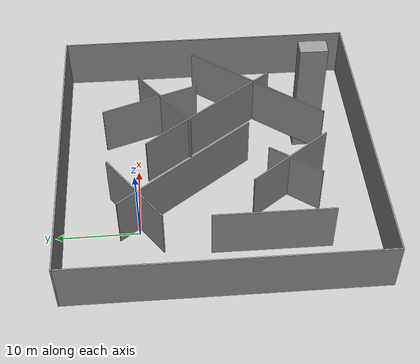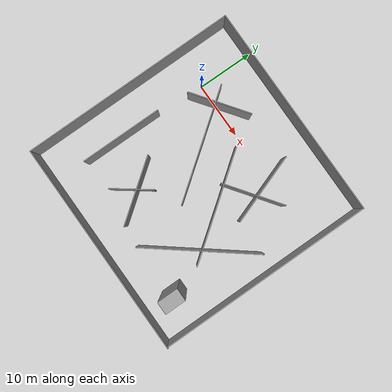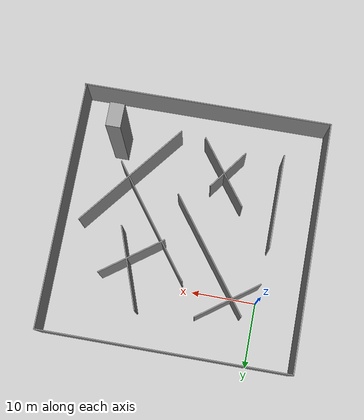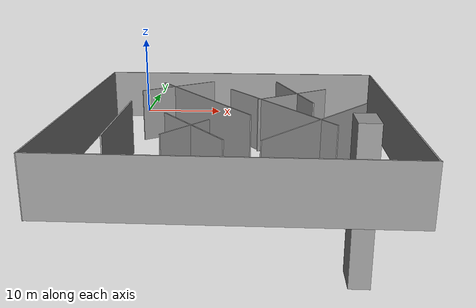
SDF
<?xml version='1.0'?>
<sdf version='1.6'>
  <model name='lab'>
    <link name='link'>
      <pose frame=''>-7.10367 -10.0107 0.018867 0 -0 0</pose>
      <inertial>
        <mass>39.716</mass>
        <inertia>
          <ixx>5223.85</ixx>
          <ixy>0</ixy>
          <ixz>0</ixz>
          <iyy>6.61934</iyy>
          <iyz>0</iyz>
          <izz>5223.85</izz>
        </inertia>
        <pose frame=''>0 0 0 0 -0 0</pose>
      </inertial>
      <self_collide>0</self_collide>
      <kinematic>0</kinematic>
      <visual name='visual'>
        <geometry>
          <box>
            <size>0.170027 39.716 6.99793</size>
          </box>
        </geometry>
        <material>
          <script>
            <name>Gazebo/Grey</name>
            <uri>file://media/materials/scripts/gazebo.material</uri>
          </script>
          <ambient>0.3 0.3 0.3 1</ambient>
          <diffuse>0.7 0.7 0.7 1</diffuse>
          <specular>0.01 0.01 0.01 1</specular>
          <emissive>0 0 0 1</emissive>
        </material>
        <pose frame=''>0 0 0 0 -0 0</pose>
        <cast_shadows>1</cast_shadows>
        <transparency>0</transparency>
      </visual>
      <collision name='collision'>
        <laser_retro>0</laser_retro>
        <max_contacts>10</max_contacts>
        <pose frame=''>0 0 0 0 -0 0</pose>
        <geometry>
          <box>
            <size>0.170027 39.716 6.99793</size>
          </box>
        </geometry>
        <surface>
          <friction>
            <ode>
              <mu>1</mu>
              <mu2>1</mu2>
              <fdir1>0 0 0</fdir1>
              <slip1>0</slip1>
              <slip2>0</slip2>
            </ode>
            <torsional>
              <coefficient>1</coefficient>
              <patch_radius>0</patch_radius>
              <surface_radius>0</surface_radius>
              <use_patch_radius>1</use_patch_radius>
              <ode>
                <slip>0</slip>
              </ode>
            </torsional>
          </friction>
          <bounce>
            <restitution_coefficient>0</restitution_coefficient>
            <threshold>1e+06</threshold>
          </bounce>
          <contact>
            <collide_without_contact>0</collide_without_contact>
            <collide_without_contact_bitmask>1</collide_without_contact_bitmask>
            <collide_bitmask>1</collide_bitmask>
            <ode>
              <soft_cfm>0</soft_cfm>
              <soft_erp>0.2</soft_erp>
              <kp>1e+13</kp>
              <kd>1</kd>
              <max_vel>0.01</max_vel>
              <min_depth>0</min_depth>
            </ode>
            <bullet>
              <split_impulse>1</split_impulse>
              <split_impulse_penetration_threshold>-0.01</split_impulse_penetration_threshold>
              <soft_cfm>0</soft_cfm>
              <soft_erp>0.2</soft_erp>
              <kp>1e+13</kp>
              <kd>1</kd>
            </bullet>
          </contact>
        </surface>
      </collision>
    </link>
    <link name='link_1'>
      <pose frame=''>26.466 -24.6117 -3.06946 -2e-06 0.002655 -0.000605</pose>
      <inertial>
        <mass>166.387</mass>
        <inertia>
          <ixx>4712.69</ixx>
          <ixy>0</ixy>
          <ixz>0</ixz>
          <iyy>4580.01</iyy>
          <iyz>0</iyz>
          <izz>288.398</izz>
        </inertia>
        <pose frame=''>0 0 0 0 -0 0</pose>
      </inertial>
      <visual name='visual'>
        <pose frame=''>0 0 0 0 -0 0</pose>
        <geometry>
          <box>
            <size>2.36963 3.8967 18.0194</size>
          </box>
        </geometry>
        <material>
          <lighting>1</lighting>
          <script>
            <uri>file://media/materials/scripts/gazebo.material</uri>
            <name>Gazebo/Grey</name>
          </script>
          <ambient>0.3 0.3 0.3 1</ambient>
          <diffuse>0.7 0.7 0.7 1</diffuse>
          <specular>0.01 0.01 0.01 1</specular>
          <emissive>0 0 0 1</emissive>
        </material>
        <cast_shadows>1</cast_shadows>
        <transparency>0</transparency>
      </visual>
      <collision name='collision'>
        <laser_retro>0</laser_retro>
        <max_contacts>10</max_contacts>
        <pose frame=''>0 0 0 0 -0 0</pose>
        <geometry>
          <box>
            <size>2.36963 3.8967 18.0194</size>
          </box>
        </geometry>
        <surface>
          <friction>
            <ode>
              <mu>1</mu>
              <mu2>1</mu2>
              <fdir1>0 0 0</fdir1>
              <slip1>0</slip1>
              <slip2>0</slip2>
            </ode>
            <torsional>
              <coefficient>1</coefficient>
              <patch_radius>0</patch_radius>
              <surface_radius>0</surface_radius>
              <use_patch_radius>1</use_patch_radius>
              <ode>
                <slip>0</slip>
              </ode>
            </torsional>
          </friction>
          <bounce>
            <restitution_coefficient>0</restitution_coefficient>
            <threshold>1e+06</threshold>
          </bounce>
          <contact>
            <collide_without_contact>0</collide_without_contact>
            <collide_without_contact_bitmask>1</collide_without_contact_bitmask>
            <collide_bitmask>1</collide_bitmask>
            <ode>
              <soft_cfm>0</soft_cfm>
              <soft_erp>0.2</soft_erp>
              <kp>1e+13</kp>
              <kd>1</kd>
              <max_vel>0.01</max_vel>
              <min_depth>0</min_depth>
            </ode>
            <bullet>
              <split_impulse>1</split_impulse>
              <split_impulse_penetration_threshold>-0.01</split_impulse_penetration_threshold>
              <soft_cfm>0</soft_cfm>
              <soft_erp>0.2</soft_erp>
              <kp>1e+13</kp>
              <kd>1</kd>
            </bullet>
          </contact>
        </surface>
      </collision>
    </link>
    <link name='link_clone'>
      <pose frame=''>12.6468 9.86375 -0.014719 -0.002655 6e-06 -1.56835</pose>
      <inertial>
        <mass>39.716</mass>
        <inertia>
          <ixx>5223.85</ixx>
          <ixy>0</ixy>
          <ixz>0</ixz>
          <iyy>6.61934</iyy>
          <iyz>0</iyz>
          <izz>5223.85</izz>
        </inertia>
        <pose frame=''>0 0 0 0 -0 0</pose>
      </inertial>
      <self_collide>0</self_collide>
      <kinematic>0</kinematic>
      <visual name='visual'>
        <geometry>
          <box>
            <size>0.170027 39.716 6.99793</size>
          </box>
        </geometry>
        <material>
          <script>
            <name>Gazebo/Grey</name>
            <uri>file://media/materials/scripts/gazebo.material</uri>
          </script>
          <ambient>0.3 0.3 0.3 1</ambient>
          <diffuse>0.7 0.7 0.7 1</diffuse>
          <specular>0.01 0.01 0.01 1</specular>
          <emissive>0 0 0 1</emissive>
          <shader type='pixel'/>
        </material>
        <pose frame=''>0 0 0 0 -0 0</pose>
        <cast_shadows>1</cast_shadows>
        <transparency>0</transparency>
      </visual>
      <collision name='collision'>
        <laser_retro>0</laser_retro>
        <max_contacts>10</max_contacts>
        <pose frame=''>0 0 0 0 -0 0</pose>
        <geometry>
          <box>
            <size>0.170027 39.716 6.99793</size>
          </box>
        </geometry>
        <surface>
          <friction>
            <ode>
              <mu>1</mu>
              <mu2>1</mu2>
              <fdir1>0 0 0</fdir1>
              <slip1>0</slip1>
              <slip2>0</slip2>
            </ode>
            <torsional>
              <coefficient>1</coefficient>
              <patch_radius>0</patch_radius>
              <surface_radius>0</surface_radius>
              <use_patch_radius>1</use_patch_radius>
              <ode>
                <slip>0</slip>
              </ode>
            </torsional>
          </friction>
          <bounce>
            <restitution_coefficient>0</restitution_coefficient>
            <threshold>1e+06</threshold>
          </bounce>
          <contact>
            <collide_without_contact>0</collide_without_contact>
            <collide_without_contact_bitmask>1</collide_without_contact_bitmask>
            <collide_bitmask>1</collide_bitmask>
            <ode>
              <soft_cfm>0</soft_cfm>
              <soft_erp>0.2</soft_erp>
              <kp>1e+13</kp>
              <kd>1</kd>
              <max_vel>0.01</max_vel>
              <min_depth>0</min_depth>
            </ode>
            <bullet>
              <split_impulse>1</split_impulse>
              <split_impulse_penetration_threshold>-0.01</split_impulse_penetration_threshold>
              <soft_cfm>0</soft_cfm>
              <soft_erp>0.2</soft_erp>
              <kp>1e+13</kp>
              <kd>1</kd>
            </bullet>
          </contact>
        </surface>
      </collision>
    </link>
    <link name='link_clone_0'>
      <pose frame=''>32.4054 -9.88106 -0.067179 -2e-06 0.002655 -0.000605</pose>
      <inertial>
        <mass>39.716</mass>
        <inertia>
          <ixx>5223.85</ixx>
          <ixy>0</ixy>
          <ixz>0</ixz>
          <iyy>6.61934</iyy>
          <iyz>0</iyz>
          <izz>5223.85</izz>
        </inertia>
        <pose frame=''>0 0 0 0 -0 0</pose>
      </inertial>
      <self_collide>0</self_collide>
      <kinematic>0</kinematic>
      <visual name='visual'>
        <geometry>
          <box>
            <size>0.170027 39.716 6.99793</size>
          </box>
        </geometry>
        <material>
          <script>
            <name>Gazebo/Grey</name>
            <uri>file://media/materials/scripts/gazebo.material</uri>
          </script>
          <ambient>0.3 0.3 0.3 1</ambient>
          <diffuse>0.7 0.7 0.7 1</diffuse>
          <specular>0.01 0.01 0.01 1</specular>
          <emissive>0 0 0 1</emissive>
          <shader type='pixel'/>
        </material>
        <pose frame=''>0 0 0 0 -0 0</pose>
        <cast_shadows>1</cast_shadows>
        <transparency>0</transparency>
      </visual>
      <collision name='collision'>
        <laser_retro>0</laser_retro>
        <max_contacts>10</max_contacts>
        <pose frame=''>0 0 0 0 -0 0</pose>
        <geometry>
          <box>
            <size>0.170027 39.716 6.99793</size>
          </box>
        </geometry>
        <surface>
          <friction>
            <ode>
              <mu>1</mu>
              <mu2>1</mu2>
              <fdir1>0 0 0</fdir1>
              <slip1>0</slip1>
              <slip2>0</slip2>
            </ode>
            <torsional>
              <coefficient>1</coefficient>
              <patch_radius>0</patch_radius>
              <surface_radius>0</surface_radius>
              <use_patch_radius>1</use_patch_radius>
              <ode>
                <slip>0</slip>
              </ode>
            </torsional>
          </friction>
          <bounce>
            <restitution_coefficient>0</restitution_coefficient>
            <threshold>1e+06</threshold>
          </bounce>
          <contact>
            <collide_without_contact>0</collide_without_contact>
            <collide_without_contact_bitmask>1</collide_without_contact_bitmask>
            <collide_bitmask>1</collide_bitmask>
            <ode>
              <soft_cfm>0</soft_cfm>
              <soft_erp>0.2</soft_erp>
              <kp>1e+13</kp>
              <kd>1</kd>
              <max_vel>0.01</max_vel>
              <min_depth>0</min_depth>
            </ode>
            <bullet>
              <split_impulse>1</split_impulse>
              <split_impulse_penetration_threshold>-0.01</split_impulse_penetration_threshold>
              <soft_cfm>0</soft_cfm>
              <soft_erp>0.2</soft_erp>
              <kp>1e+13</kp>
              <kd>1</kd>
            </bullet>
          </contact>
        </surface>
      </collision>
    </link>
    <link name='link_clone_clone'>
      <pose frame=''>12.7693 -29.7513 -0.048615 -0.00531 1e-05 -1.56896</pose>
      <inertial>
        <mass>39.716</mass>
        <inertia>
          <ixx>5223.85</ixx>
          <ixy>0</ixy>
          <ixz>0</ixz>
          <iyy>6.61934</iyy>
          <iyz>0</iyz>
          <izz>5223.85</izz>
        </inertia>
        <pose frame=''>0 0 0 0 -0 0</pose>
      </inertial>
      <self_collide>0</self_collide>
      <kinematic>0</kinematic>
      <visual name='visual'>
        <geometry>
          <box>
            <size>0.170027 39.716 6.99793</size>
          </box>
        </geometry>
        <material>
          <script>
            <name>Gazebo/Grey</name>
            <uri>file://media/materials/scripts/gazebo.material</uri>
          </script>
          <ambient>0.3 0.3 0.3 1</ambient>
          <diffuse>0.7 0.7 0.7 1</diffuse>
          <specular>0.01 0.01 0.01 1</specular>
          <emissive>0 0 0 1</emissive>
          <shader type='pixel'/>
        </material>
        <pose frame=''>0 0 0 0 -0 0</pose>
        <cast_shadows>1</cast_shadows>
        <transparency>0</transparency>
      </visual>
      <collision name='collision'>
        <laser_retro>0</laser_retro>
        <max_contacts>10</max_contacts>
        <pose frame=''>0 0 0 0 -0 0</pose>
        <geometry>
          <box>
            <size>0.170027 39.716 6.99793</size>
          </box>
        </geometry>
        <surface>
          <friction>
            <ode>
              <mu>1</mu>
              <mu2>1</mu2>
              <fdir1>0 0 0</fdir1>
              <slip1>0</slip1>
              <slip2>0</slip2>
            </ode>
            <torsional>
              <coefficient>1</coefficient>
              <patch_radius>0</patch_radius>
              <surface_radius>0</surface_radius>
              <use_patch_radius>1</use_patch_radius>
              <ode>
                <slip>0</slip>
              </ode>
            </torsional>
          </friction>
          <bounce>
            <restitution_coefficient>0</restitution_coefficient>
            <threshold>1e+06</threshold>
          </bounce>
          <contact>
            <collide_without_contact>0</collide_without_contact>
            <collide_without_contact_bitmask>1</collide_without_contact_bitmask>
            <collide_bitmask>1</collide_bitmask>
            <ode>
              <soft_cfm>0</soft_cfm>
              <soft_erp>0.2</soft_erp>
              <kp>1e+13</kp>
              <kd>1</kd>
              <max_vel>0.01</max_vel>
              <min_depth>0</min_depth>
            </ode>
            <bullet>
              <split_impulse>1</split_impulse>
              <split_impulse_penetration_threshold>-0.01</split_impulse_penetration_threshold>
              <soft_cfm>0</soft_cfm>
              <soft_erp>0.2</soft_erp>
              <kp>1e+13</kp>
              <kd>1</kd>
            </bullet>
          </contact>
        </surface>
      </collision>
    </link>
    <link name='link_clone_clone_0'>
      <pose frame=''>4.37165 0.589647 -0.026328 -0.004295 0.003123 -0.942256</pose>
      <inertial>
        <mass>11.3941</mass>
        <inertia>
          <ixx>124.221</ixx>
          <ixy>0</ixy>
          <ixz>0</ixz>
          <iyy>1.89902</iyy>
          <iyz>0</iyz>
          <izz>124.221</izz>
        </inertia>
        <pose frame=''>0 0 0 0 -0 0</pose>
      </inertial>
      <self_collide>0</self_collide>
      <kinematic>0</kinematic>
      <visual name='visual'>
        <geometry>
          <box>
            <size>0.170027 11.3941 6.99793</size>
          </box>
        </geometry>
        <material>
          <script>
            <name>Gazebo/Grey</name>
            <uri>file://media/materials/scripts/gazebo.material</uri>
          </script>
          <ambient>0.3 0.3 0.3 1</ambient>
          <diffuse>0.7 0.7 0.7 1</diffuse>
          <specular>0.01 0.01 0.01 1</specular>
          <emissive>0 0 0 1</emissive>
          <shader type='pixel'/>
        </material>
        <pose frame=''>0 0 0 0 -0 0</pose>
        <cast_shadows>1</cast_shadows>
        <transparency>0</transparency>
      </visual>
      <collision name='collision'>
        <laser_retro>0</laser_retro>
        <max_contacts>10</max_contacts>
        <pose frame=''>0 0 0 0 -0 0</pose>
        <geometry>
          <box>
            <size>0.170027 11.3941 6.99793</size>
          </box>
        </geometry>
        <surface>
          <friction>
            <ode>
              <mu>1</mu>
              <mu2>1</mu2>
              <fdir1>0 0 0</fdir1>
              <slip1>0</slip1>
              <slip2>0</slip2>
            </ode>
            <torsional>
              <coefficient>1</coefficient>
              <patch_radius>0</patch_radius>
              <surface_radius>0</surface_radius>
              <use_patch_radius>1</use_patch_radius>
              <ode>
                <slip>0</slip>
              </ode>
            </torsional>
          </friction>
          <bounce>
            <restitution_coefficient>0</restitution_coefficient>
            <threshold>1e+06</threshold>
          </bounce>
          <contact>
            <collide_without_contact>0</collide_without_contact>
            <collide_without_contact_bitmask>1</collide_without_contact_bitmask>
            <collide_bitmask>1</collide_bitmask>
            <ode>
              <soft_cfm>0</soft_cfm>
              <soft_erp>0.2</soft_erp>
              <kp>1e+13</kp>
              <kd>1</kd>
              <max_vel>0.01</max_vel>
              <min_depth>0</min_depth>
            </ode>
            <bullet>
              <split_impulse>1</split_impulse>
              <split_impulse_penetration_threshold>-0.01</split_impulse_penetration_threshold>
              <soft_cfm>0</soft_cfm>
              <soft_erp>0.2</soft_erp>
              <kp>1e+13</kp>
              <kd>1</kd>
            </bullet>
          </contact>
        </surface>
      </collision>
    </link>
    <link name='link_clone_clone_0_clone'>
      <pose frame=''>8.31127 -5.90905 -0.049408 -0.004763 -0.006385 -2.50115</pose>
      <inertial>
        <mass>21.3538</mass>
        <inertia>
          <ixx>813.204</ixx>
          <ixy>0</ixy>
          <ixz>0</ixz>
          <iyy>3.55897</iyy>
          <iyz>0</iyz>
          <izz>813.204</izz>
        </inertia>
        <pose frame=''>0 0 0 0 -0 0</pose>
      </inertial>
      <self_collide>0</self_collide>
      <kinematic>0</kinematic>
      <visual name='visual'>
        <geometry>
          <box>
            <size>0.170027 21.3538 6.99793</size>
          </box>
        </geometry>
        <material>
          <script>
            <name>Gazebo/Grey</name>
            <uri>file://media/materials/scripts/gazebo.material</uri>
          </script>
          <ambient>0.3 0.3 0.3 1</ambient>
          <diffuse>0.7 0.7 0.7 1</diffuse>
          <specular>0.01 0.01 0.01 1</specular>
          <emissive>0 0 0 1</emissive>
          <shader type='pixel'/>
        </material>
        <pose frame=''>0 0 0 0 -0 0</pose>
        <cast_shadows>1</cast_shadows>
        <transparency>0</transparency>
      </visual>
      <collision name='collision'>
        <laser_retro>0</laser_retro>
        <max_contacts>10</max_contacts>
        <pose frame=''>0 0 0 0 -0 0</pose>
        <geometry>
          <box>
            <size>0.170027 21.3538 6.99793</size>
          </box>
        </geometry>
        <surface>
          <friction>
            <ode>
              <mu>1</mu>
              <mu2>1</mu2>
              <fdir1>0 0 0</fdir1>
              <slip1>0</slip1>
              <slip2>0</slip2>
            </ode>
            <torsional>
              <coefficient>1</coefficient>
              <patch_radius>0</patch_radius>
              <surface_radius>0</surface_radius>
              <use_patch_radius>1</use_patch_radius>
              <ode>
                <slip>0</slip>
              </ode>
            </torsional>
          </friction>
          <bounce>
            <restitution_coefficient>0</restitution_coefficient>
            <threshold>1e+06</threshold>
          </bounce>
          <contact>
            <collide_without_contact>0</collide_without_contact>
            <collide_without_contact_bitmask>1</collide_without_contact_bitmask>
            <collide_bitmask>1</collide_bitmask>
            <ode>
              <soft_cfm>0</soft_cfm>
              <soft_erp>0.2</soft_erp>
              <kp>1e+13</kp>
              <kd>1</kd>
              <max_vel>0.01</max_vel>
              <min_depth>0</min_depth>
            </ode>
            <bullet>
              <split_impulse>1</split_impulse>
              <split_impulse_penetration_threshold>-0.01</split_impulse_penetration_threshold>
              <soft_cfm>0</soft_cfm>
              <soft_erp>0.2</soft_erp>
              <kp>1e+13</kp>
              <kd>1</kd>
            </bullet>
          </contact>
        </surface>
      </collision>
    </link>
    <link name='link_clone_clone_0_clone_0'>
      <pose frame=''>20.0691 -3.60778 -0.079618 -0.006444 0.004683 -0.942869</pose>
      <inertial>
        <mass>11.3941</mass>
        <inertia>
          <ixx>124.221</ixx>
          <ixy>0</ixy>
          <ixz>0</ixz>
          <iyy>1.89902</iyy>
          <iyz>0</iyz>
          <izz>124.221</izz>
        </inertia>
        <pose frame=''>0 0 0 0 -0 0</pose>
      </inertial>
      <self_collide>0</self_collide>
      <kinematic>0</kinematic>
      <visual name='visual'>
        <geometry>
          <box>
            <size>0.170027 11.3941 6.99793</size>
          </box>
        </geometry>
        <material>
          <script>
            <name>Gazebo/Grey</name>
            <uri>file://media/materials/scripts/gazebo.material</uri>
          </script>
          <ambient>0.3 0.3 0.3 1</ambient>
          <diffuse>0.7 0.7 0.7 1</diffuse>
          <specular>0.01 0.01 0.01 1</specular>
          <emissive>0 0 0 1</emissive>
          <shader type='pixel'/>
        </material>
        <pose frame=''>0 0 0 0 -0 0</pose>
        <cast_shadows>1</cast_shadows>
        <transparency>0</transparency>
      </visual>
      <collision name='collision'>
        <laser_retro>0</laser_retro>
        <max_contacts>10</max_contacts>
        <pose frame=''>0 0 0 0 -0 0</pose>
        <geometry>
          <box>
            <size>0.170027 11.3941 6.99793</size>
          </box>
        </geometry>
        <surface>
          <friction>
            <ode>
              <mu>1</mu>
              <mu2>1</mu2>
              <fdir1>0 0 0</fdir1>
              <slip1>0</slip1>
              <slip2>0</slip2>
            </ode>
            <torsional>
              <coefficient>1</coefficient>
              <patch_radius>0</patch_radius>
              <surface_radius>0</surface_radius>
              <use_patch_radius>1</use_patch_radius>
              <ode>
                <slip>0</slip>
              </ode>
            </torsional>
          </friction>
          <bounce>
            <restitution_coefficient>0</restitution_coefficient>
            <threshold>1e+06</threshold>
          </bounce>
          <contact>
            <collide_without_contact>0</collide_without_contact>
            <collide_without_contact_bitmask>1</collide_without_contact_bitmask>
            <collide_bitmask>1</collide_bitmask>
            <ode>
              <soft_cfm>0</soft_cfm>
              <soft_erp>0.2</soft_erp>
              <kp>1e+13</kp>
              <kd>1</kd>
              <max_vel>0.01</max_vel>
              <min_depth>0</min_depth>
            </ode>
            <bullet>
              <split_impulse>1</split_impulse>
              <split_impulse_penetration_threshold>-0.01</split_impulse_penetration_threshold>
              <soft_cfm>0</soft_cfm>
              <soft_erp>0.2</soft_erp>
              <kp>1e+13</kp>
              <kd>1</kd>
            </bullet>
          </contact>
        </surface>
      </collision>
    </link>
    <link name='link_clone_clone_0_clone_clone'>
      <pose frame=''>-0.63369 -16.023 -0.047719 1.4e-05 -0.010621 3.1395</pose>
      <inertial>
        <mass>15.0057</mass>
        <inertia>
          <ixx>282.825</ixx>
          <ixy>0</ixy>
          <ixz>0</ixz>
          <iyy>2.50096</iyy>
          <iyz>0</iyz>
          <izz>282.825</izz>
        </inertia>
        <pose frame=''>0 0 0 0 -0 0</pose>
      </inertial>
      <self_collide>0</self_collide>
      <kinematic>0</kinematic>
      <visual name='visual'>
        <geometry>
          <box>
            <size>0.170027 15.0057 6.99793</size>
          </box>
        </geometry>
        <material>
          <script>
            <name>Gazebo/Grey</name>
            <uri>file://media/materials/scripts/gazebo.material</uri>
          </script>
          <ambient>0.3 0.3 0.3 1</ambient>
          <diffuse>0.7 0.7 0.7 1</diffuse>
          <specular>0.01 0.01 0.01 1</specular>
          <emissive>0 0 0 1</emissive>
          <shader type='pixel'/>
        </material>
        <pose frame=''>0 0 0 0 -0 0</pose>
        <cast_shadows>1</cast_shadows>
        <transparency>0</transparency>
      </visual>
      <collision name='collision'>
        <laser_retro>0</laser_retro>
        <max_contacts>10</max_contacts>
        <pose frame=''>0 0 0 0 -0 0</pose>
        <geometry>
          <box>
            <size>0.170027 15.0057 6.99793</size>
          </box>
        </geometry>
        <surface>
          <friction>
            <ode>
              <mu>1</mu>
              <mu2>1</mu2>
              <fdir1>0 0 0</fdir1>
              <slip1>0</slip1>
              <slip2>0</slip2>
            </ode>
            <torsional>
              <coefficient>1</coefficient>
              <patch_radius>0</patch_radius>
              <surface_radius>0</surface_radius>
              <use_patch_radius>1</use_patch_radius>
              <ode>
                <slip>0</slip>
              </ode>
            </torsional>
          </friction>
          <bounce>
            <restitution_coefficient>0</restitution_coefficient>
            <threshold>1e+06</threshold>
          </bounce>
          <contact>
            <collide_without_contact>0</collide_without_contact>
            <collide_without_contact_bitmask>1</collide_without_contact_bitmask>
            <collide_bitmask>1</collide_bitmask>
            <ode>
              <soft_cfm>0</soft_cfm>
              <soft_erp>0.2</soft_erp>
              <kp>1e+13</kp>
              <kd>1</kd>
              <max_vel>0.01</max_vel>
              <min_depth>0</min_depth>
            </ode>
            <bullet>
              <split_impulse>1</split_impulse>
              <split_impulse_penetration_threshold>-0.01</split_impulse_penetration_threshold>
              <soft_cfm>0</soft_cfm>
              <soft_erp>0.2</soft_erp>
              <kp>1e+13</kp>
              <kd>1</kd>
            </bullet>
          </contact>
        </surface>
      </collision>
    </link>
    <link name='link_clone_clone_0_clone_clone_0'>
      <pose frame=''>8.33286 -19.2066 -0.071528 -0.006348 -0.008515 -2.50174</pose>
      <inertial>
        <mass>12.5834</mass>
        <inertia>
          <ixx>167.092</ixx>
          <ixy>0</ixy>
          <ixz>0</ixz>
          <iyy>2.09724</iyy>
          <iyz>0</iyz>
          <izz>167.092</izz>
        </inertia>
        <pose frame=''>0 0 0 0 -0 0</pose>
      </inertial>
      <self_collide>0</self_collide>
      <kinematic>0</kinematic>
      <visual name='visual'>
        <geometry>
          <box>
            <size>0.170027 12.5834 6.99793</size>
          </box>
        </geometry>
        <material>
          <script>
            <name>Gazebo/Grey</name>
            <uri>file://media/materials/scripts/gazebo.material</uri>
          </script>
          <ambient>0.3 0.3 0.3 1</ambient>
          <diffuse>0.7 0.7 0.7 1</diffuse>
          <specular>0.01 0.01 0.01 1</specular>
          <emissive>0 0 0 1</emissive>
          <shader type='pixel'/>
        </material>
        <pose frame=''>0 0 0 0 -0 0</pose>
        <cast_shadows>1</cast_shadows>
        <transparency>0</transparency>
      </visual>
      <collision name='collision'>
        <laser_retro>0</laser_retro>
        <max_contacts>10</max_contacts>
        <pose frame=''>0 0 0 0 -0 0</pose>
        <geometry>
          <box>
            <size>0.170027 12.5834 6.99793</size>
          </box>
        </geometry>
        <surface>
          <friction>
            <ode>
              <mu>1</mu>
              <mu2>1</mu2>
              <fdir1>0 0 0</fdir1>
              <slip1>0</slip1>
              <slip2>0</slip2>
            </ode>
            <torsional>
              <coefficient>1</coefficient>
              <patch_radius>0</patch_radius>
              <surface_radius>0</surface_radius>
              <use_patch_radius>1</use_patch_radius>
              <ode>
                <slip>0</slip>
              </ode>
            </torsional>
          </friction>
          <bounce>
            <restitution_coefficient>0</restitution_coefficient>
            <threshold>1e+06</threshold>
          </bounce>
          <contact>
            <collide_without_contact>0</collide_without_contact>
            <collide_without_contact_bitmask>1</collide_without_contact_bitmask>
            <collide_bitmask>1</collide_bitmask>
            <ode>
              <soft_cfm>0</soft_cfm>
              <soft_erp>0.2</soft_erp>
              <kp>1e+13</kp>
              <kd>1</kd>
              <max_vel>0.01</max_vel>
              <min_depth>0</min_depth>
            </ode>
            <bullet>
              <split_impulse>1</split_impulse>
              <split_impulse_penetration_threshold>-0.01</split_impulse_penetration_threshold>
              <soft_cfm>0</soft_cfm>
              <soft_erp>0.2</soft_erp>
              <kp>1e+13</kp>
              <kd>1</kd>
            </bullet>
          </contact>
        </surface>
      </collision>
    </link>
    <link name='link_clone_clone_0_clone_clone_0_clone'>
      <pose frame=''>7.67427 -19.6941 -0.091899 0.007911 -0.010662 2.50212</pose>
      <inertial>
        <mass>7.73627</mass>
        <inertia>
          <ixx>39.2301</ixx>
          <ixy>0</ixy>
          <ixz>0</ixz>
          <iyy>1.28938</iyy>
          <iyz>0</iyz>
          <izz>39.2301</izz>
        </inertia>
        <pose frame=''>0 0 0 0 -0 0</pose>
      </inertial>
      <self_collide>0</self_collide>
      <kinematic>0</kinematic>
      <visual name='visual'>
        <geometry>
          <box>
            <size>0.170027 7.73627 6.99793</size>
          </box>
        </geometry>
        <material>
          <script>
            <name>Gazebo/Grey</name>
            <uri>file://media/materials/scripts/gazebo.material</uri>
          </script>
          <ambient>0.3 0.3 0.3 1</ambient>
          <diffuse>0.7 0.7 0.7 1</diffuse>
          <specular>0.01 0.01 0.01 1</specular>
          <emissive>0 0 0 1</emissive>
          <shader type='pixel'/>
        </material>
        <pose frame=''>0 0 0 0 -0 0</pose>
        <cast_shadows>1</cast_shadows>
        <transparency>0</transparency>
      </visual>
      <collision name='collision'>
        <laser_retro>0</laser_retro>
        <max_contacts>10</max_contacts>
        <pose frame=''>0 0 0 0 -0 0</pose>
        <geometry>
          <box>
            <size>0.170027 7.73627 6.99793</size>
          </box>
        </geometry>
        <surface>
          <friction>
            <ode>
              <mu>1</mu>
              <mu2>1</mu2>
              <fdir1>0 0 0</fdir1>
              <slip1>0</slip1>
              <slip2>0</slip2>
            </ode>
            <torsional>
              <coefficient>1</coefficient>
              <patch_radius>0</patch_radius>
              <surface_radius>0</surface_radius>
              <use_patch_radius>1</use_patch_radius>
              <ode>
                <slip>0</slip>
              </ode>
            </torsional>
          </friction>
          <bounce>
            <restitution_coefficient>0</restitution_coefficient>
            <threshold>1e+06</threshold>
          </bounce>
          <contact>
            <collide_without_contact>0</collide_without_contact>
            <collide_without_contact_bitmask>1</collide_without_contact_bitmask>
            <collide_bitmask>1</collide_bitmask>
            <ode>
              <soft_cfm>0</soft_cfm>
              <soft_erp>0.2</soft_erp>
              <kp>1e+13</kp>
              <kd>1</kd>
              <max_vel>0.01</max_vel>
              <min_depth>0</min_depth>
            </ode>
            <bullet>
              <split_impulse>1</split_impulse>
              <split_impulse_penetration_threshold>-0.01</split_impulse_penetration_threshold>
              <soft_cfm>0</soft_cfm>
              <soft_erp>0.2</soft_erp>
              <kp>1e+13</kp>
              <kd>1</kd>
            </bullet>
          </contact>
        </surface>
      </collision>
    </link>
    <link name='link_clone_clone_0_clone_clone_1'>
      <pose frame=''>18.0654 -9.60656 -0.097375 -0.006348 -0.008515 -2.50174</pose>
      <inertial>
        <mass>21.3538</mass>
        <inertia>
          <ixx>813.204</ixx>
          <ixy>0</ixy>
          <ixz>0</ixz>
          <iyy>3.55897</iyy>
          <iyz>0</iyz>
          <izz>813.204</izz>
        </inertia>
        <pose frame=''>0 0 0 0 -0 0</pose>
      </inertial>
      <self_collide>0</self_collide>
      <kinematic>0</kinematic>
      <visual name='visual'>
        <geometry>
          <box>
            <size>0.170027 21.3538 6.99793</size>
          </box>
        </geometry>
        <material>
          <script>
            <name>Gazebo/Grey</name>
            <uri>file://media/materials/scripts/gazebo.material</uri>
          </script>
          <ambient>0.3 0.3 0.3 1</ambient>
          <diffuse>0.7 0.7 0.7 1</diffuse>
          <specular>0.01 0.01 0.01 1</specular>
          <emissive>0 0 0 1</emissive>
          <shader type='pixel'/>
        </material>
        <pose frame=''>0 0 0 0 -0 0</pose>
        <cast_shadows>1</cast_shadows>
        <transparency>0</transparency>
      </visual>
      <collision name='collision'>
        <laser_retro>0</laser_retro>
        <max_contacts>10</max_contacts>
        <pose frame=''>0 0 0 0 -0 0</pose>
        <geometry>
          <box>
            <size>0.170027 21.3538 6.99793</size>
          </box>
        </geometry>
        <surface>
          <friction>
            <ode>
              <mu>1</mu>
              <mu2>1</mu2>
              <fdir1>0 0 0</fdir1>
              <slip1>0</slip1>
              <slip2>0</slip2>
            </ode>
            <torsional>
              <coefficient>1</coefficient>
              <patch_radius>0</patch_radius>
              <surface_radius>0</surface_radius>
              <use_patch_radius>1</use_patch_radius>
              <ode>
                <slip>0</slip>
              </ode>
            </torsional>
          </friction>
          <bounce>
            <restitution_coefficient>0</restitution_coefficient>
            <threshold>1e+06</threshold>
          </bounce>
          <contact>
            <collide_without_contact>0</collide_without_contact>
            <collide_without_contact_bitmask>1</collide_without_contact_bitmask>
            <collide_bitmask>1</collide_bitmask>
            <ode>
              <soft_cfm>0</soft_cfm>
              <soft_erp>0.2</soft_erp>
              <kp>1e+13</kp>
              <kd>1</kd>
              <max_vel>0.01</max_vel>
              <min_depth>0</min_depth>
            </ode>
            <bullet>
              <split_impulse>1</split_impulse>
              <split_impulse_penetration_threshold>-0.01</split_impulse_penetration_threshold>
              <soft_cfm>0</soft_cfm>
              <soft_erp>0.2</soft_erp>
              <kp>1e+13</kp>
              <kd>1</kd>
            </bullet>
          </contact>
        </surface>
      </collision>
    </link>
    <link name='link_clone_clone_0_clone_clone_1_clone'>
      <pose frame=''>20.2366 -1.78029 -0.151111 -0.004433 -0.012514 -2.8022</pose>
      <inertial>
        <mass>13.3592</mass>
        <inertia>
          <ixx>199.797</ixx>
          <ixy>0</ixy>
          <ixz>0</ixz>
          <iyy>2.22653</iyy>
          <iyz>0</iyz>
          <izz>199.797</izz>
        </inertia>
        <pose frame=''>0 0 0 0 -0 0</pose>
      </inertial>
      <self_collide>0</self_collide>
      <kinematic>0</kinematic>
      <visual name='visual'>
        <geometry>
          <box>
            <size>0.170027 13.3592 6.99793</size>
          </box>
        </geometry>
        <material>
          <script>
            <name>Gazebo/Grey</name>
            <uri>file://media/materials/scripts/gazebo.material</uri>
          </script>
          <ambient>0.3 0.3 0.3 1</ambient>
          <diffuse>0.7 0.7 0.7 1</diffuse>
          <specular>0.01 0.01 0.01 1</specular>
          <emissive>0 0 0 1</emissive>
          <shader type='pixel'/>
        </material>
        <pose frame=''>0 0 0 0 -0 0</pose>
        <cast_shadows>1</cast_shadows>
        <transparency>0</transparency>
      </visual>
      <collision name='collision'>
        <laser_retro>0</laser_retro>
        <max_contacts>10</max_contacts>
        <pose frame=''>0 0 0 0 -0 0</pose>
        <geometry>
          <box>
            <size>0.170027 13.3592 6.99793</size>
          </box>
        </geometry>
        <surface>
          <friction>
            <ode>
              <mu>1</mu>
              <mu2>1</mu2>
              <fdir1>0 0 0</fdir1>
              <slip1>0</slip1>
              <slip2>0</slip2>
            </ode>
            <torsional>
              <coefficient>1</coefficient>
              <patch_radius>0</patch_radius>
              <surface_radius>0</surface_radius>
              <use_patch_radius>1</use_patch_radius>
              <ode>
                <slip>0</slip>
              </ode>
            </torsional>
          </friction>
          <bounce>
            <restitution_coefficient>0</restitution_coefficient>
            <threshold>1e+06</threshold>
          </bounce>
          <contact>
            <collide_without_contact>0</collide_without_contact>
            <collide_without_contact_bitmask>1</collide_without_contact_bitmask>
            <collide_bitmask>1</collide_bitmask>
            <ode>
              <soft_cfm>0</soft_cfm>
              <soft_erp>0.2</soft_erp>
              <kp>1e+13</kp>
              <kd>1</kd>
              <max_vel>0.01</max_vel>
              <min_depth>0</min_depth>
            </ode>
            <bullet>
              <split_impulse>1</split_impulse>
              <split_impulse_penetration_threshold>-0.01</split_impulse_penetration_threshold>
              <soft_cfm>0</soft_cfm>
              <soft_erp>0.2</soft_erp>
              <kp>1e+13</kp>
              <kd>1</kd>
            </bullet>
          </contact>
        </surface>
      </collision>
    </link>
    <link name='link_clone_clone_0_clone_clone_2'>
      <pose frame=''>22.5723 -16.2194 -0.10934 -0.006574 0.008342 -0.668218</pose>
      <inertial>
        <mass>21.3538</mass>
        <inertia>
          <ixx>813.204</ixx>
          <ixy>0</ixy>
          <ixz>0</ixz>
          <iyy>3.55897</iyy>
          <iyz>0</iyz>
          <izz>813.204</izz>
        </inertia>
        <pose frame=''>0 0 0 0 -0 0</pose>
      </inertial>
      <self_collide>0</self_collide>
      <kinematic>0</kinematic>
      <visual name='visual'>
        <geometry>
          <box>
            <size>0.170027 21.3538 6.99793</size>
          </box>
        </geometry>
        <material>
          <script>
            <name>Gazebo/Grey</name>
            <uri>file://media/materials/scripts/gazebo.material</uri>
          </script>
          <ambient>0.3 0.3 0.3 1</ambient>
          <diffuse>0.7 0.7 0.7 1</diffuse>
          <specular>0.01 0.01 0.01 1</specular>
          <emissive>0 0 0 1</emissive>
          <shader type='pixel'/>
        </material>
        <pose frame=''>0 0 0 0 -0 0</pose>
        <cast_shadows>1</cast_shadows>
        <transparency>0</transparency>
      </visual>
      <collision name='collision'>
        <laser_retro>0</laser_retro>
        <max_contacts>10</max_contacts>
        <pose frame=''>0 0 0 0 -0 0</pose>
        <geometry>
          <box>
            <size>0.170027 21.3538 6.99793</size>
          </box>
        </geometry>
        <surface>
          <friction>
            <ode>
              <mu>1</mu>
              <mu2>1</mu2>
              <fdir1>0 0 0</fdir1>
              <slip1>0</slip1>
              <slip2>0</slip2>
            </ode>
            <torsional>
              <coefficient>1</coefficient>
              <patch_radius>0</patch_radius>
              <surface_radius>0</surface_radius>
              <use_patch_radius>1</use_patch_radius>
              <ode>
                <slip>0</slip>
              </ode>
            </torsional>
          </friction>
          <bounce>
            <restitution_coefficient>0</restitution_coefficient>
            <threshold>1e+06</threshold>
          </bounce>
          <contact>
            <collide_without_contact>0</collide_without_contact>
            <collide_without_contact_bitmask>1</collide_without_contact_bitmask>
            <collide_bitmask>1</collide_bitmask>
            <ode>
              <soft_cfm>0</soft_cfm>
              <soft_erp>0.2</soft_erp>
              <kp>1e+13</kp>
              <kd>1</kd>
              <max_vel>0.01</max_vel>
              <min_depth>0</min_depth>
            </ode>
            <bullet>
              <split_impulse>1</split_impulse>
              <split_impulse_penetration_threshold>-0.01</split_impulse_penetration_threshold>
              <soft_cfm>0</soft_cfm>
              <soft_erp>0.2</soft_erp>
              <kp>1e+13</kp>
              <kd>1</kd>
            </bullet>
          </contact>
        </surface>
      </collision>
    </link>
    <static>1</static>
    <allow_auto_disable>1</allow_auto_disable>
  </model>
</sdf>
